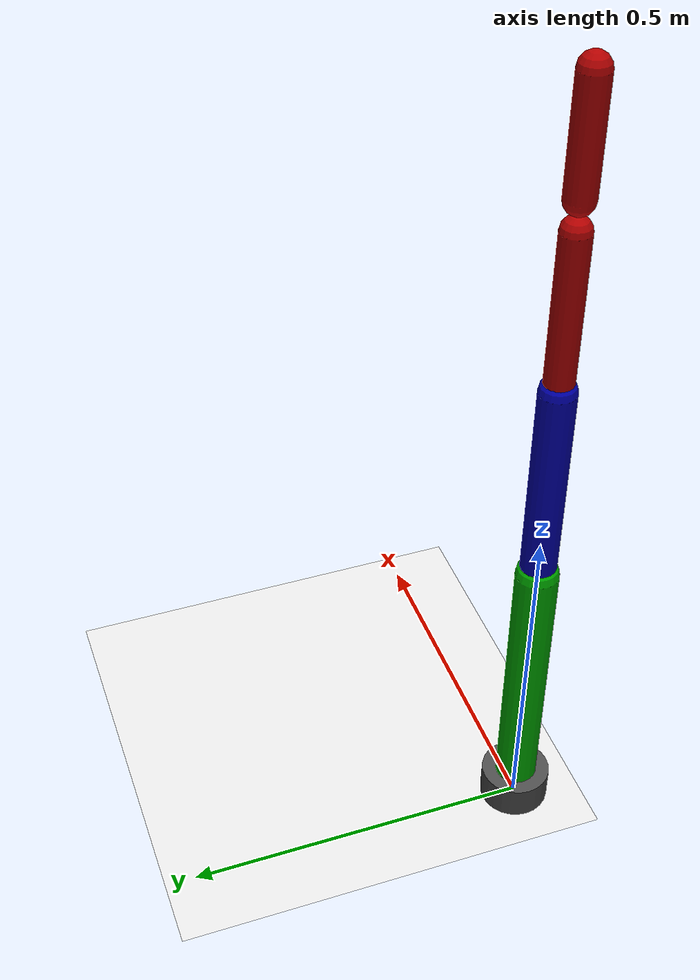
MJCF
<mujoco model="3d_chain_arm">
    <option timestep="0.0005" gravity="0 0 -9.81"/>

    <worldbody>
        <light pos="0 0 3" dir="0 0 -1"/>
        <geom type="plane" size="10 10 0.1" rgba="0.9 0.9 0.9 1"/>

        <!-- Root base attached directly to the ground at Z = 0 -->
        <body name="base" pos="0 0 0">
            <geom type="cylinder" size="0.05 0.05" rgba="0.3 0.3 0.3 1"/>

            <!-- Link 1: Shoulder (Rotates around Y-axis) -->
            <body name="link1" pos="0 0 0.05">
                <joint name="shoulder_joint" type="hinge" axis="0 1 0" pos="0 0 0"/>
                <geom type="capsule" fromto="0 0 0 0 0 0.4" size="0.03" rgba="0 0.7 0 1"/>

                <!-- Link 2: Elbow (Nested inside Link 1) -->
                <body name="link2" pos="0 0 0.4">
                    <joint name="elbow_joint" type="hinge" axis="0 1 0" pos="0 0 0"/>
                    <geom type="capsule" fromto="0 0 0 0 0 0.3" size="0.025" rgba="0 0 0.7 1"/>

                    <!-- Link 3: Wrist (Nested inside Link 2) -->
                    <body name="link3" pos="0 0 0.3">
                        <joint name="wrist_joint" type="hinge" axis="0 1 0" pos="0 0 0"/>
                        <geom type="capsule" fromto="0 0 0 0 0 0.22" size="0.02" rgba="0.7 0 0 1"/>

                             <!-- Link 4: Thumb (Nested inside Link 3) -->
                                 <body name="link4" pos="0 0 0.26">
                                     <joint name="thumb_joint" type="hinge" axis="0 1 0" pos="0 0 0"/>
                                     <geom type="capsule" fromto="0 0 0 0 0 0.15" size="0.02" rgba="0.7 0 0 1"/>
                                 </body>

                             <!-- Link 5: Finger1 (Nested inside Link 3) -->
                                 <body name="link5" pos="0 0 0.26">
                                     <joint name="finger1_joint" type="hinge" axis="0 1 0" pos="0 0 0"/>
                                     <geom type="capsule" fromto="0 0 0 0 0 0.15" size="0.02" rgba="0.7 0 0 1"/>
                                 </body>

                             <!-- Link 6: Finger2 (Nested inside Link 3) -->
                                 <body name="link6" pos="0 0 0.26">
                                     <joint name="finger2_joint" type="hinge" axis="0 1 0" pos="0 0 0"/>
                                     <geom type="capsule" fromto="0 0 0 0 0 0.15" size="0.02" rgba="0.7 0 0 1"/>
                                 </body>

                    </body>
                </body>
            </body>
        </body>
    </worldbody>

    <actuator>
        <!-- Distinct position servos controlling each joint independently -->
        <position name="shoulder_servo" joint="shoulder_joint" kp="300" kv="30"/>
        <position name="elbow_servo"    joint="elbow_joint" kp="200" kv="20"/>
        <position name="wrist_servo"    joint="wrist_joint" kp="100" kv="10"/>
        <position name="thumb_servo"    joint="thumb_joint" kp="10" kv="1"/>
        <position name="finger1_servo"  joint="finger1_joint" kp="10" kv="1"/>
        <position name="finger2_servo"  joint="finger2_joint" kp="10" kv="1"/>
    </actuator>
</mujoco>
